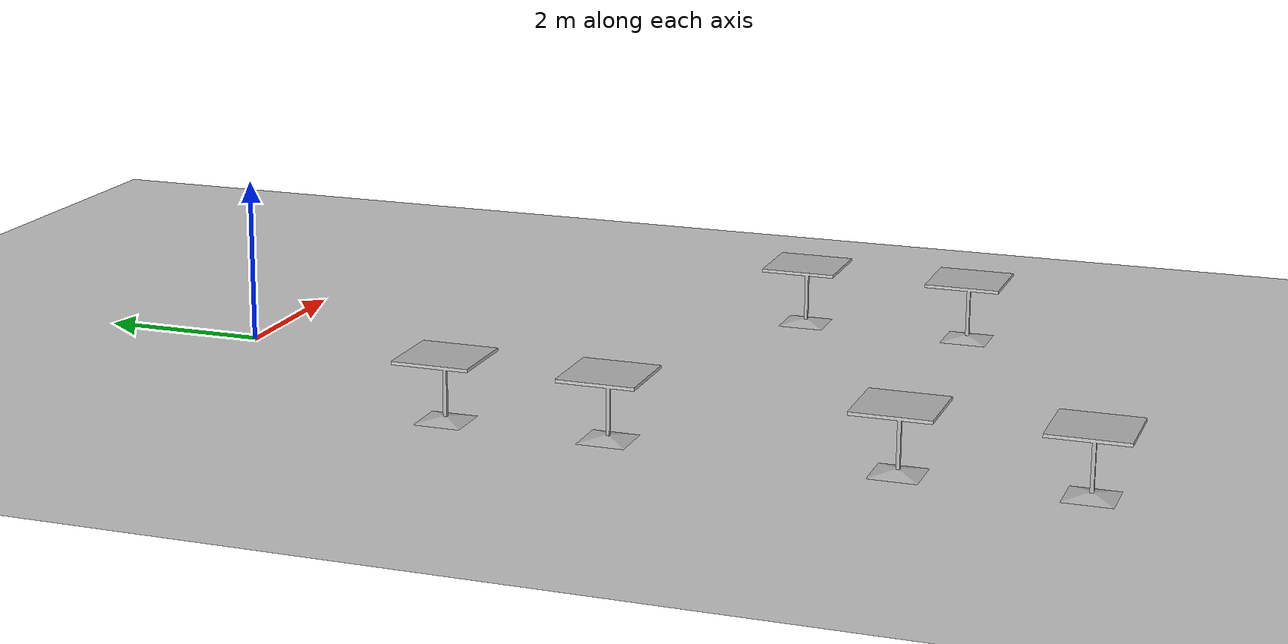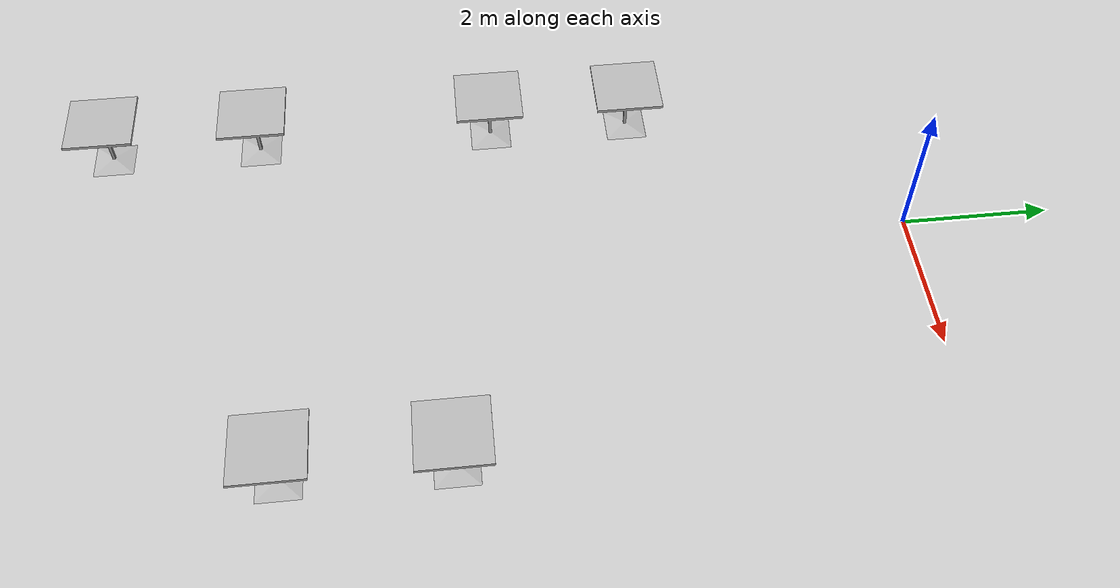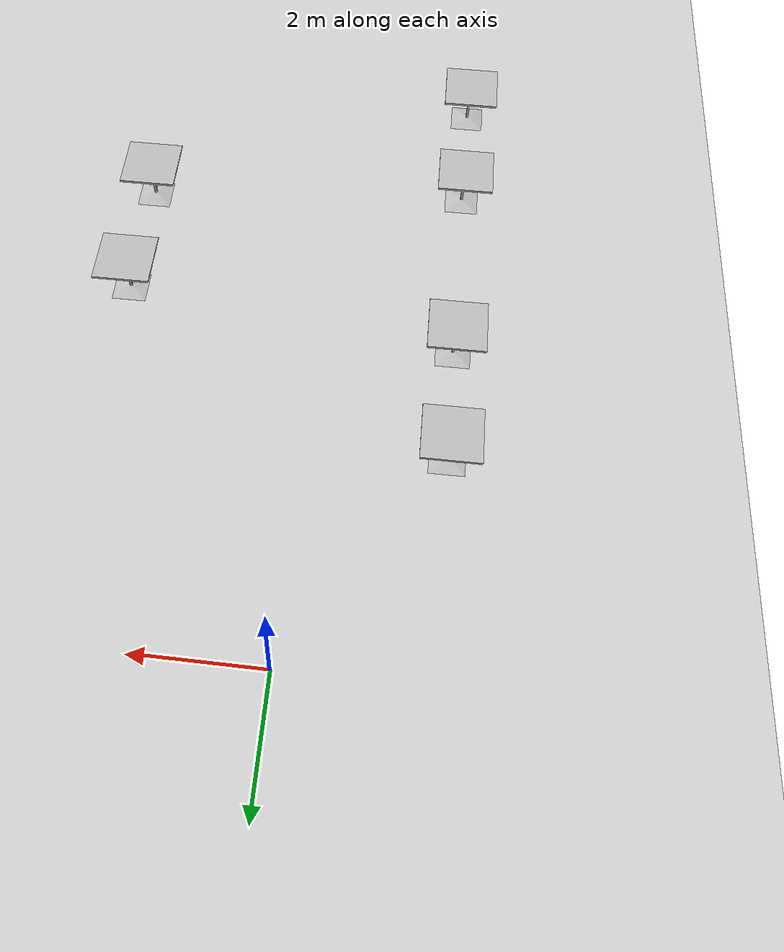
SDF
<sdf version="1.7">
 <world name="default">
  <light name="sun" type="directional">
   <pose>0 0 10 0 -0 0</pose>
   <diffuse>0.8 0.8 0.8 1</diffuse>
   <specular>0.2 0.2 0.2 1</specular>
   <attenuation>
    <range>1000</range>
    <constant>0.9</constant>
    <linear>0.01</linear>
    <quadratic>0.001</quadratic>
   </attenuation>
   <direction>-0.5 0.1 -0.9</direction>
   <spot><inner_angle>0</inner_angle><outer_angle>0</outer_angle><falloff>0</falloff></spot>
  </light>
  <model name="ground_plane">
   <static>1</static>
   <link name="link">
    <collision name="collision">
     <geometry><plane><normal>0 0 1</normal><size>100 100</size></plane></geometry>
     <surface><friction><ode><mu>100</mu><mu2>50</mu2></ode></friction></surface>
    </collision>
    <visual name="visual">
     <cast_shadows>0</cast_shadows>
     <geometry><plane><normal>0 0 1</normal><size>100 100</size></plane></geometry>
     <material>
      <script><uri>file://media/materials/scripts/gazebo.material</uri><name>Gazebo/Grey</name></script>
     </material>
    </visual>
   </link>
  </model>
  <gravity>0 0 -9.8</gravity>
  <magnetic_field>6e-06 2.3e-05 -4.2e-05</magnetic_field>
  <atmosphere type="adiabatic"/>
  <physics type="ode">
   <max_step_size>0.001</max_step_size>
   <real_time_factor>1</real_time_factor>
   <real_time_update_rate>1000</real_time_update_rate>
  </physics>
  <scene><ambient>0.4 0.4 0.4 1</ambient><background>0.7 0.7 0.7 1</background><shadows>1</shadows></scene>
  <audio><device>default</device></audio>
  <spherical_coordinates>
   <surface_model>EARTH_WGS84</surface_model>
   <latitude_deg>0</latitude_deg>
   <longitude_deg>0</longitude_deg>
   <elevation>0</elevation>
   <heading_deg>0</heading_deg>
  </spherical_coordinates>
  <model name="cafe_table">
   <static>1</static>
   <link name="link">
    <collision name="surface">
     <pose>0 0 0.755 0 -0 0</pose>
     <geometry><box><size>0.913 0.913 0.04</size></box></geometry>
    </collision>
    <collision name="column">
     <pose>0 0 0.37 0 -0 0</pose>
     <geometry><box><size>0.042 0.042 0.74</size></box></geometry>
    </collision>
    <collision name="base">
     <pose>0 0 0.02 0 -0 0</pose>
     <geometry><box><size>0.56 0.56 0.04</size></box></geometry>
    </collision>
    <visual name="visual">
     <geometry><mesh><uri>model://cafe_table/meshes/cafe_table.dae</uri></mesh></geometry>
    </visual>
   </link>
   <pose>-2.29138 -10.805 0 0 -0 0</pose>
  </model>
  <model name="cafe_table">
   <static>1</static>
   <link name="link">
    <collision name="surface">
     <pose>0 0 0.755 0 -0 0</pose>
     <geometry><box><size>0.913 0.913 0.04</size></box></geometry>
    </collision>
    <collision name="column">
     <pose>0 0 0.37 0 -0 0</pose>
     <geometry><box><size>0.042 0.042 0.74</size></box></geometry>
    </collision>
    <collision name="base">
     <pose>0 0 0.02 0 -0 0</pose>
     <geometry><box><size>0.56 0.56 0.04</size></box></geometry>
    </collision>
    <visual name="visual">
     <geometry><mesh><uri>model://cafe_table/meshes/cafe_table.dae</uri></mesh></geometry>
    </visual>
   </link>
   <pose>-2.29138 -10.805 0 0 -0 0</pose>
  </model>
  <model name="cafe_table_0">
   <static>1</static>
   <link name="link">
    <collision name="surface">
     <pose>0 0 0.755 0 -0 0</pose>
     <geometry><box><size>0.913 0.913 0.04</size></box></geometry>
    </collision>
    <collision name="column">
     <pose>0 0 0.37 0 -0 0</pose>
     <geometry><box><size>0.042 0.042 0.74</size></box></geometry>
    </collision>
    <collision name="base">
     <pose>0 0 0.02 0 -0 0</pose>
     <geometry><box><size>0.56 0.56 0.04</size></box></geometry>
    </collision>
    <visual name="visual">
     <geometry><mesh><uri>model://cafe_table/meshes/cafe_table.dae</uri></mesh></geometry>
    </visual>
   </link>
   <pose>-2.26523 -8.74961 0 0 -0 0</pose>
  </model>
  <model name="cafe_table_1">
   <static>1</static>
   <link name="link">
    <collision name="surface">
     <pose>0 0 0.755 0 -0 0</pose>
     <geometry><box><size>0.913 0.913 0.04</size></box></geometry>
    </collision>
    <collision name="column">
     <pose>0 0 0.37 0 -0 0</pose>
     <geometry><box><size>0.042 0.042 0.74</size></box></geometry>
    </collision>
    <collision name="base">
     <pose>0 0 0.02 0 -0 0</pose>
     <geometry><box><size>0.56 0.56 0.04</size></box></geometry>
    </collision>
    <visual name="visual">
     <geometry><mesh><uri>model://cafe_table/meshes/cafe_table.dae</uri></mesh></geometry>
    </visual>
   </link>
   <pose>3.11349 -8.3233 0 0 -0 0</pose>
  </model>
  <model name="cafe_table_2">
   <static>1</static>
   <link name="link">
    <collision name="surface">
     <pose>0 0 0.755 0 -0 0</pose>
     <geometry><box><size>0.913 0.913 0.04</size></box></geometry>
    </collision>
    <collision name="column">
     <pose>0 0 0.37 0 -0 0</pose>
     <geometry><box><size>0.042 0.042 0.74</size></box></geometry>
    </collision>
    <collision name="base">
     <pose>0 0 0.02 0 -0 0</pose>
     <geometry><box><size>0.56 0.56 0.04</size></box></geometry>
    </collision>
    <visual name="visual">
     <geometry><mesh><uri>model://cafe_table/meshes/cafe_table.dae</uri></mesh></geometry>
    </visual>
   </link>
   <pose>3.14519 -6.23679 0 0 -0 0</pose>
  </model>
  <model name="cafe_table_3">
   <static>1</static>
   <link name="link">
    <collision name="surface">
     <pose>0 0 0.755 0 -0 0</pose>
     <geometry><box><size>0.913 0.913 0.04</size></box></geometry>
    </collision>
    <collision name="column">
     <pose>0 0 0.37 0 -0 0</pose>
     <geometry><box><size>0.042 0.042 0.74</size></box></geometry>
    </collision>
    <collision name="base">
     <pose>0 0 0.02 0 -0 0</pose>
     <geometry><box><size>0.56 0.56 0.04</size></box></geometry>
    </collision>
    <visual name="visual">
     <geometry><mesh><uri>model://cafe_table/meshes/cafe_table.dae</uri></mesh></geometry>
    </visual>
   </link>
   <pose>-2.24887 -5.47842 0 0 -0 0</pose>
  </model>
  <model name="cafe_table_4">
   <static>1</static>
   <link name="link">
    <collision name="surface">
     <pose>0 0 0.755 0 -0 0</pose>
     <geometry><box><size>0.913 0.913 0.04</size></box></geometry>
    </collision>
    <collision name="column">
     <pose>0 0 0.37 0 -0 0</pose>
     <geometry><box><size>0.042 0.042 0.74</size></box></geometry>
    </collision>
    <collision name="base">
     <pose>0 0 0.02 0 -0 0</pose>
     <geometry><box><size>0.56 0.56 0.04</size></box></geometry>
    </collision>
    <visual name="visual">
     <geometry><mesh><uri>model://cafe_table/meshes/cafe_table.dae</uri></mesh></geometry>
    </visual>
   </link>
   <pose>-2.24345 -3.52949 0 0 -0 0</pose>
  </model>
 </world>
</sdf>
